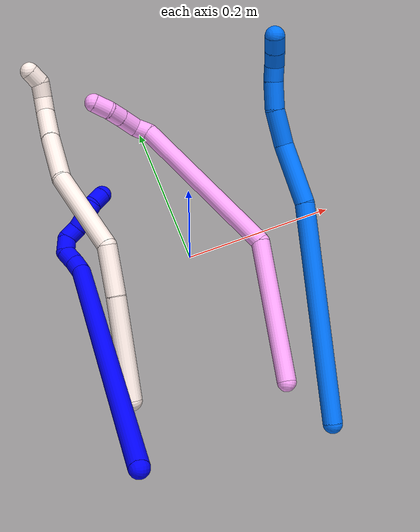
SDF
<sdf version="1.7">
 <world name="default">
  <model name="1">
   <static>0</static>
   <link name="1">
    <collision name="collision-cylinder-e_1_1_4">
     <pose>-0.049748 0.158705 -0.065859 -1.96415 -0.281819 0.418663</pose>
     <geometry><cylinder><radius>0.0125</radius><length>0.357768</length></cylinder></geometry>
     <surface>
      <friction><ode><mu>1.16</mu><mu2>1.16</mu2><slip1>0</slip1><slip2>0</slip2></ode></friction>
      <contact><ode><kp>1e+06</kp><kd>1</kd><max_vel>0</max_vel><min_depth>0.001</min_depth></ode></contact>
     </surface>
    </collision>
    <visual name="visual-cylinder-e_1_1_4">
     <pose>-0.049748 0.158705 -0.065859 -1.96415 -0.281819 0.418663</pose>
     <geometry><cylinder><radius>0.0125</radius><length>0.357768</length></cylinder></geometry>
     <material><ambient>0 0 1 1</ambient></material>
    </visual>
    <collision name="collision-cylinder-e_2_4_5">
     <pose>-0.102901 0.32763 -0.132787 -1.6749 -0.319955 0.35443</pose>
     <geometry><cylinder><radius>0.0125</radius><length>0.021651</length></cylinder></geometry>
     <surface>
      <friction><ode><mu>1.16</mu><mu2>1.16</mu2><slip1>0</slip1><slip2>0</slip2></ode></friction>
      <contact><ode><kp>1e+06</kp><kd>1</kd><max_vel>0</max_vel><min_depth>0.001</min_depth></ode></contact>
     </surface>
    </collision>
    <visual name="visual-cylinder-e_2_4_5">
     <pose>-0.102901 0.32763 -0.132787 -1.6749 -0.319955 0.35443</pose>
     <geometry><cylinder><radius>0.0125</radius><length>0.021651</length></cylinder></geometry>
     <material><ambient>0 0 1 1</ambient></material>
    </visual>
    <collision name="collision-cylinder-e_3_5_6">
     <pose>-0.108462 0.347699 -0.132198 -1.40416 -0.212576 0.180001</pose>
     <geometry><cylinder><radius>0.0125</radius><length>0.020435</length></cylinder></geometry>
     <surface>
      <friction><ode><mu>1.16</mu><mu2>1.16</mu2><slip1>0</slip1><slip2>0</slip2></ode></friction>
      <contact><ode><kp>1e+06</kp><kd>1</kd><max_vel>0</max_vel><min_depth>0.001</min_depth></ode></contact>
     </surface>
    </collision>
    <visual name="visual-cylinder-e_3_5_6">
     <pose>-0.108462 0.347699 -0.132198 -1.40416 -0.212576 0.180001</pose>
     <geometry><cylinder><radius>0.0125</radius><length>0.020435</length></cylinder></geometry>
     <material><ambient>0 0 1 1</ambient></material>
    </visual>
    <collision name="collision-cylinder-e_4_6_7">
     <pose>-0.10758 0.366514 -0.133958 -1.9349 0.306649 -0.441244</pose>
     <geometry><cylinder><radius>0.0125</radius><length>0.020128</length></cylinder></geometry>
     <surface>
      <friction><ode><mu>1.16</mu><mu2>1.16</mu2><slip1>0</slip1><slip2>0</slip2></ode></friction>
      <contact><ode><kp>1e+06</kp><kd>1</kd><max_vel>0</max_vel><min_depth>0.001</min_depth></ode></contact>
     </surface>
    </collision>
    <visual name="visual-cylinder-e_4_6_7">
     <pose>-0.10758 0.366514 -0.133958 -1.9349 0.306649 -0.441244</pose>
     <geometry><cylinder><radius>0.0125</radius><length>0.020128</length></cylinder></geometry>
     <material><ambient>0 0 1 1</ambient></material>
    </visual>
    <collision name="collision-cylinder-e_5_7_8">
     <pose>-0.098018 0.379284 -0.143942 -2.61649 0.709983 -1.88697</pose>
     <geometry><cylinder><radius>0.0125</radius><length>0.020017</length></cylinder></geometry>
     <surface>
      <friction><ode><mu>1.16</mu><mu2>1.16</mu2><slip1>0</slip1><slip2>0</slip2></ode></friction>
      <contact><ode><kp>1e+06</kp><kd>1</kd><max_vel>0</max_vel><min_depth>0.001</min_depth></ode></contact>
     </surface>
    </collision>
    <visual name="visual-cylinder-e_5_7_8">
     <pose>-0.098018 0.379284 -0.143942 -2.61649 0.709983 -1.88697</pose>
     <geometry><cylinder><radius>0.0125</radius><length>0.020017</length></cylinder></geometry>
     <material><ambient>0 0 1 1</ambient></material>
    </visual>
    <collision name="collision-cylinder-e_6_8_9">
     <pose>-0.082948 0.387069 -0.153847 -2.26857 1.02475 -1.75676</pose>
     <geometry><cylinder><radius>0.0125</radius><length>0.020001</length></cylinder></geometry>
     <surface>
      <friction><ode><mu>1.16</mu><mu2>1.16</mu2><slip1>0</slip1><slip2>0</slip2></ode></friction>
      <contact><ode><kp>1e+06</kp><kd>1</kd><max_vel>0</max_vel><min_depth>0.001</min_depth></ode></contact>
     </surface>
    </collision>
    <visual name="visual-cylinder-e_6_8_9">
     <pose>-0.082948 0.387069 -0.153847 -2.26857 1.02475 -1.75676</pose>
     <geometry><cylinder><radius>0.0125</radius><length>0.020001</length></cylinder></geometry>
     <material><ambient>0 0 1 1</ambient></material>
    </visual>
    <collision name="collision-cylinder-e_7_9_10">
     <pose>-0.068193 0.396652 -0.162666 -2.34525 0.669863 -1.38247</pose>
     <geometry><cylinder><radius>0.0125</radius><length>0.02</length></cylinder></geometry>
     <surface>
      <friction><ode><mu>1.16</mu><mu2>1.16</mu2><slip1>0</slip1><slip2>0</slip2></ode></friction>
      <contact><ode><kp>1e+06</kp><kd>1</kd><max_vel>0</max_vel><min_depth>0.001</min_depth></ode></contact>
     </surface>
    </collision>
    <visual name="visual-cylinder-e_7_9_10">
     <pose>-0.068193 0.396652 -0.162666 -2.34525 0.669863 -1.38247</pose>
     <geometry><cylinder><radius>0.0125</radius><length>0.02</length></cylinder></geometry>
     <material><ambient>0 0 1 1</ambient></material>
    </visual>
    <collision name="collision-cylinder-e_8_10_2">
     <pose>-0.058316 0.407127 -0.176073 -2.59043 0.375534 -1.18328</pose>
     <geometry><cylinder><radius>0.0125</radius><length>0.02</length></cylinder></geometry>
     <surface>
      <friction><ode><mu>1.16</mu><mu2>1.16</mu2><slip1>0</slip1><slip2>0</slip2></ode></friction>
      <contact><ode><kp>1e+06</kp><kd>1</kd><max_vel>0</max_vel><min_depth>0.001</min_depth></ode></contact>
     </surface>
    </collision>
    <visual name="visual-cylinder-e_8_10_2">
     <pose>-0.058316 0.407127 -0.176073 -2.59043 0.375534 -1.18328</pose>
     <geometry><cylinder><radius>0.0125</radius><length>0.02</length></cylinder></geometry>
     <material><ambient>0 0 1 1</ambient></material>
    </visual>
    <collision name="collision-sphere-2">
     <pose>-0.054648 0.411999 -0.183999 0 -0 0</pose>
     <geometry><sphere><radius>0.0125</radius></sphere></geometry>
     <surface>
      <friction><ode><mu>1.16</mu><mu2>1.16</mu2><slip1>0</slip1><slip2>0</slip2></ode></friction>
      <contact><ode><kp>1e+06</kp><kd>1</kd><max_vel>0</max_vel><min_depth>0.001</min_depth></ode></contact>
     </surface>
    </collision>
    <visual name="visual-sphere-2">
     <pose>-0.054648 0.411999 -0.183999 0 -0 0</pose>
     <geometry><sphere><radius>0.0125</radius></sphere></geometry>
     <material><ambient>0 0 1 1</ambient></material>
    </visual>
    <collision name="collision-sphere-10">
     <pose>-0.061984 0.402255 -0.168148 0 -0 0</pose>
     <geometry><sphere><radius>0.0125</radius></sphere></geometry>
     <surface>
      <friction><ode><mu>1.16</mu><mu2>1.16</mu2><slip1>0</slip1><slip2>0</slip2></ode></friction>
      <contact><ode><kp>1e+06</kp><kd>1</kd><max_vel>0</max_vel><min_depth>0.001</min_depth></ode></contact>
     </surface>
    </collision>
    <visual name="visual-sphere-10">
     <pose>-0.061984 0.402255 -0.168148 0 -0 0</pose>
     <geometry><sphere><radius>0.0125</radius></sphere></geometry>
     <material><ambient>0 0 1 1</ambient></material>
    </visual>
    <collision name="collision-sphere-9">
     <pose>-0.074401 0.391048 -0.157184 0 -0 0</pose>
     <geometry><sphere><radius>0.0125</radius></sphere></geometry>
     <surface>
      <friction><ode><mu>1.16</mu><mu2>1.16</mu2><slip1>0</slip1><slip2>0</slip2></ode></friction>
      <contact><ode><kp>1e+06</kp><kd>1</kd><max_vel>0</max_vel><min_depth>0.001</min_depth></ode></contact>
     </surface>
    </collision>
    <visual name="visual-sphere-9">
     <pose>-0.074401 0.391048 -0.157184 0 -0 0</pose>
     <geometry><sphere><radius>0.0125</radius></sphere></geometry>
     <material><ambient>0 0 1 1</ambient></material>
    </visual>
    <collision name="collision-sphere-4">
     <pose>-0.099496 0.317409 -0.131719 0 -0 0</pose>
     <geometry><sphere><radius>0.0125</radius></sphere></geometry>
     <surface>
      <friction><ode><mu>1.16</mu><mu2>1.16</mu2><slip1>0</slip1><slip2>0</slip2></ode></friction>
      <contact><ode><kp>1e+06</kp><kd>1</kd><max_vel>0</max_vel><min_depth>0.001</min_depth></ode></contact>
     </surface>
    </collision>
    <visual name="visual-sphere-4">
     <pose>-0.099496 0.317409 -0.131719 0 -0 0</pose>
     <geometry><sphere><radius>0.0125</radius></sphere></geometry>
     <material><ambient>0 0 1 1</ambient></material>
    </visual>
    <collision name="collision-sphere-1">
     <geometry><sphere><radius>0.0125</radius></sphere></geometry>
     <surface>
      <friction><ode><mu>1.16</mu><mu2>1.16</mu2><slip1>0</slip1><slip2>0</slip2></ode></friction>
      <contact><ode><kp>1e+06</kp><kd>1</kd><max_vel>0</max_vel><min_depth>0.001</min_depth></ode></contact>
     </surface>
    </collision>
    <visual name="visual-sphere-1">
     <geometry><sphere><radius>0.0125</radius></sphere></geometry>
     <material><ambient>0 0 1 1</ambient></material>
    </visual>
    <collision name="collision-sphere-8">
     <pose>-0.091494 0.383089 -0.15051 0 -0 0</pose>
     <geometry><sphere><radius>0.0125</radius></sphere></geometry>
     <surface>
      <friction><ode><mu>1.16</mu><mu2>1.16</mu2><slip1>0</slip1><slip2>0</slip2></ode></friction>
      <contact><ode><kp>1e+06</kp><kd>1</kd><max_vel>0</max_vel><min_depth>0.001</min_depth></ode></contact>
     </surface>
    </collision>
    <visual name="visual-sphere-8">
     <pose>-0.091494 0.383089 -0.15051 0 -0 0</pose>
     <geometry><sphere><radius>0.0125</radius></sphere></geometry>
     <material><ambient>0 0 1 1</ambient></material>
    </visual>
    <collision name="collision-sphere-5">
     <pose>-0.106306 0.33785 -0.133855 0 -0 0</pose>
     <geometry><sphere><radius>0.0125</radius></sphere></geometry>
     <surface>
      <friction><ode><mu>1.16</mu><mu2>1.16</mu2><slip1>0</slip1><slip2>0</slip2></ode></friction>
      <contact><ode><kp>1e+06</kp><kd>1</kd><max_vel>0</max_vel><min_depth>0.001</min_depth></ode></contact>
     </surface>
    </collision>
    <visual name="visual-sphere-5">
     <pose>-0.106306 0.33785 -0.133855 0 -0 0</pose>
     <geometry><sphere><radius>0.0125</radius></sphere></geometry>
     <material><ambient>0 0 1 1</ambient></material>
    </visual>
    <collision name="collision-sphere-6">
     <pose>-0.110617 0.357548 -0.130542 0 -0 0</pose>
     <geometry><sphere><radius>0.0125</radius></sphere></geometry>
     <surface>
      <friction><ode><mu>1.16</mu><mu2>1.16</mu2><slip1>0</slip1><slip2>0</slip2></ode></friction>
      <contact><ode><kp>1e+06</kp><kd>1</kd><max_vel>0</max_vel><min_depth>0.001</min_depth></ode></contact>
     </surface>
    </collision>
    <visual name="visual-sphere-6">
     <pose>-0.110617 0.357548 -0.130542 0 -0 0</pose>
     <geometry><sphere><radius>0.0125</radius></sphere></geometry>
     <material><ambient>0 0 1 1</ambient></material>
    </visual>
    <collision name="collision-sphere-7">
     <pose>-0.104542 0.375479 -0.137375 0 -0 0</pose>
     <geometry><sphere><radius>0.0125</radius></sphere></geometry>
     <surface>
      <friction><ode><mu>1.16</mu><mu2>1.16</mu2><slip1>0</slip1><slip2>0</slip2></ode></friction>
      <contact><ode><kp>1e+06</kp><kd>1</kd><max_vel>0</max_vel><min_depth>0.001</min_depth></ode></contact>
     </surface>
    </collision>
    <visual name="visual-sphere-7">
     <pose>-0.104542 0.375479 -0.137375 0 -0 0</pose>
     <geometry><sphere><radius>0.0125</radius></sphere></geometry>
     <material><ambient>0 0 1 1</ambient></material>
    </visual>
    <inertial>
     <pose>-0.061118 0.21953 -0.089137 0 -0 0</pose>
     <mass>0.5</mass>
     <inertia>
      <ixx>0.004853</ixx>
      <ixy>0</ixy>
      <ixz>0</ixz>
      <iyy>0.000585</iyy>
      <iyz>0</iyz>
      <izz>-0.002357</izz>
     </inertia>
    </inertial>
   </link>
   <pose>-0.164702 -0.288507 0.198933 -0.086689 -0.896 0.134248</pose>
  </model>
  <model name="4">
   <static>0</static>
   <link name="4">
    <collision name="collision-cylinder-e_1_1_4">
     <pose>-0.022355 -0.002338 0.091223 0.025621 -0.240251 -0.003093</pose>
     <geometry><cylinder><radius>0.0125</radius><length>0.187903</length></cylinder></geometry>
     <surface>
      <friction><ode><mu>1.16</mu><mu2>1.16</mu2><slip1>0</slip1><slip2>0</slip2></ode></friction>
      <contact><ode><kp>1e+06</kp><kd>1</kd><max_vel>0</max_vel><min_depth>0.001</min_depth></ode></contact>
     </surface>
    </collision>
    <visual name="visual-cylinder-e_1_1_4">
     <pose>-0.022355 -0.002338 0.091223 0.025621 -0.240251 -0.003093</pose>
     <geometry><cylinder><radius>0.0125</radius><length>0.187903</length></cylinder></geometry>
     <material><ambient>1 0.65098 0.996078 1</ambient></material>
    </visual>
    <collision name="collision-cylinder-e_2_4_5">
     <pose>-0.125743 -0.000835 0.257012 -0.051457 -0.826269 0.022561</pose>
     <geometry><cylinder><radius>0.0125</radius><length>0.220372</length></cylinder></geometry>
     <surface>
      <friction><ode><mu>1.16</mu><mu2>1.16</mu2><slip1>0</slip1><slip2>0</slip2></ode></friction>
      <contact><ode><kp>1e+06</kp><kd>1</kd><max_vel>0</max_vel><min_depth>0.001</min_depth></ode></contact>
     </surface>
    </collision>
    <visual name="visual-cylinder-e_2_4_5">
     <pose>-0.125743 -0.000835 0.257012 -0.051457 -0.826269 0.022561</pose>
     <geometry><cylinder><radius>0.0125</radius><length>0.220372</length></cylinder></geometry>
     <material><ambient>1 0.65098 0.996078 1</ambient></material>
    </visual>
    <collision name="collision-cylinder-e_3_5_6">
     <pose>-0.216318 0.001602 0.33446 0.4532 -1.24676 -0.328568</pose>
     <geometry><cylinder><radius>0.0125</radius><length>0.020136</length></cylinder></geometry>
     <surface>
      <friction><ode><mu>1.16</mu><mu2>1.16</mu2><slip1>0</slip1><slip2>0</slip2></ode></friction>
      <contact><ode><kp>1e+06</kp><kd>1</kd><max_vel>0</max_vel><min_depth>0.001</min_depth></ode></contact>
     </surface>
    </collision>
    <visual name="visual-cylinder-e_3_5_6">
     <pose>-0.216318 0.001602 0.33446 0.4532 -1.24676 -0.328568</pose>
     <geometry><cylinder><radius>0.0125</radius><length>0.020136</length></cylinder></geometry>
     <material><ambient>1 0.65098 0.996078 1</ambient></material>
    </visual>
    <collision name="collision-cylinder-e_4_6_7">
     <pose>-0.234738 -0.009546 0.340343 1.27203 -0.716327 -0.539292</pose>
     <geometry><cylinder><radius>0.0125</radius><length>0.027035</length></cylinder></geometry>
     <surface>
      <friction><ode><mu>1.16</mu><mu2>1.16</mu2><slip1>0</slip1><slip2>0</slip2></ode></friction>
      <contact><ode><kp>1e+06</kp><kd>1</kd><max_vel>0</max_vel><min_depth>0.001</min_depth></ode></contact>
     </surface>
    </collision>
    <visual name="visual-cylinder-e_4_6_7">
     <pose>-0.234738 -0.009546 0.340343 1.27203 -0.716327 -0.539292</pose>
     <geometry><cylinder><radius>0.0125</radius><length>0.027035</length></cylinder></geometry>
     <material><ambient>1 0.65098 0.996078 1</ambient></material>
    </visual>
    <collision name="collision-cylinder-e_5_7_8">
     <pose>-0.250474 -0.0271 0.345201 1.33738 -0.707043 -0.567418</pose>
     <geometry><cylinder><radius>0.0125</radius><length>0.021121</length></cylinder></geometry>
     <surface>
      <friction><ode><mu>1.16</mu><mu2>1.16</mu2><slip1>0</slip1><slip2>0</slip2></ode></friction>
      <contact><ode><kp>1e+06</kp><kd>1</kd><max_vel>0</max_vel><min_depth>0.001</min_depth></ode></contact>
     </surface>
    </collision>
    <visual name="visual-cylinder-e_5_7_8">
     <pose>-0.250474 -0.0271 0.345201 1.33738 -0.707043 -0.567418</pose>
     <geometry><cylinder><radius>0.0125</radius><length>0.021121</length></cylinder></geometry>
     <material><ambient>1 0.65098 0.996078 1</ambient></material>
    </visual>
    <collision name="collision-cylinder-e_6_8_2">
     <pose>-0.267239 -0.040534 0.349808 1.11596 -1.00726 -0.662486</pose>
     <geometry><cylinder><radius>0.0125</radius><length>0.023432</length></cylinder></geometry>
     <surface>
      <friction><ode><mu>1.16</mu><mu2>1.16</mu2><slip1>0</slip1><slip2>0</slip2></ode></friction>
      <contact><ode><kp>1e+06</kp><kd>1</kd><max_vel>0</max_vel><min_depth>0.001</min_depth></ode></contact>
     </surface>
    </collision>
    <visual name="visual-cylinder-e_6_8_2">
     <pose>-0.267239 -0.040534 0.349808 1.11596 -1.00726 -0.662486</pose>
     <geometry><cylinder><radius>0.0125</radius><length>0.023432</length></cylinder></geometry>
     <material><ambient>1 0.65098 0.996078 1</ambient></material>
    </visual>
    <collision name="collision-sphere-2">
     <pose>-0.277143 -0.046156 0.352557 0 -0 0</pose>
     <geometry><sphere><radius>0.0125</radius></sphere></geometry>
     <surface>
      <friction><ode><mu>1.16</mu><mu2>1.16</mu2><slip1>0</slip1><slip2>0</slip2></ode></friction>
      <contact><ode><kp>1e+06</kp><kd>1</kd><max_vel>0</max_vel><min_depth>0.001</min_depth></ode></contact>
     </surface>
    </collision>
    <visual name="visual-sphere-2">
     <pose>-0.277143 -0.046156 0.352557 0 -0 0</pose>
     <geometry><sphere><radius>0.0125</radius></sphere></geometry>
     <material><ambient>1 0.65098 0.996078 1</ambient></material>
    </visual>
    <collision name="collision-sphere-4">
     <pose>-0.044711 -0.004675 0.182446 0 -0 0</pose>
     <geometry><sphere><radius>0.0125</radius></sphere></geometry>
     <surface>
      <friction><ode><mu>1.16</mu><mu2>1.16</mu2><slip1>0</slip1><slip2>0</slip2></ode></friction>
      <contact><ode><kp>1e+06</kp><kd>1</kd><max_vel>0</max_vel><min_depth>0.001</min_depth></ode></contact>
     </surface>
    </collision>
    <visual name="visual-sphere-4">
     <pose>-0.044711 -0.004675 0.182446 0 -0 0</pose>
     <geometry><sphere><radius>0.0125</radius></sphere></geometry>
     <material><ambient>1 0.65098 0.996078 1</ambient></material>
    </visual>
    <collision name="collision-sphere-1">
     <geometry><sphere><radius>0.0125</radius></sphere></geometry>
     <surface>
      <friction><ode><mu>1.16</mu><mu2>1.16</mu2><slip1>0</slip1><slip2>0</slip2></ode></friction>
      <contact><ode><kp>1e+06</kp><kd>1</kd><max_vel>0</max_vel><min_depth>0.001</min_depth></ode></contact>
     </surface>
    </collision>
    <visual name="visual-sphere-1">
     <geometry><sphere><radius>0.0125</radius></sphere></geometry>
     <material><ambient>1 0.65098 0.996078 1</ambient></material>
    </visual>
    <collision name="collision-sphere-8">
     <pose>-0.257334 -0.034912 0.347058 0 -0 0</pose>
     <geometry><sphere><radius>0.0125</radius></sphere></geometry>
     <surface>
      <friction><ode><mu>1.16</mu><mu2>1.16</mu2><slip1>0</slip1><slip2>0</slip2></ode></friction>
      <contact><ode><kp>1e+06</kp><kd>1</kd><max_vel>0</max_vel><min_depth>0.001</min_depth></ode></contact>
     </surface>
    </collision>
    <visual name="visual-sphere-8">
     <pose>-0.257334 -0.034912 0.347058 0 -0 0</pose>
     <geometry><sphere><radius>0.0125</radius></sphere></geometry>
     <material><ambient>1 0.65098 0.996078 1</ambient></material>
    </visual>
    <collision name="collision-sphere-5">
     <pose>-0.206774 0.003005 0.331578 0 -0 0</pose>
     <geometry><sphere><radius>0.0125</radius></sphere></geometry>
     <surface>
      <friction><ode><mu>1.16</mu><mu2>1.16</mu2><slip1>0</slip1><slip2>0</slip2></ode></friction>
      <contact><ode><kp>1e+06</kp><kd>1</kd><max_vel>0</max_vel><min_depth>0.001</min_depth></ode></contact>
     </surface>
    </collision>
    <visual name="visual-sphere-5">
     <pose>-0.206774 0.003005 0.331578 0 -0 0</pose>
     <geometry><sphere><radius>0.0125</radius></sphere></geometry>
     <material><ambient>1 0.65098 0.996078 1</ambient></material>
    </visual>
    <collision name="collision-sphere-6">
     <pose>-0.225862 0.000198 0.337342 0 -0 0</pose>
     <geometry><sphere><radius>0.0125</radius></sphere></geometry>
     <surface>
      <friction><ode><mu>1.16</mu><mu2>1.16</mu2><slip1>0</slip1><slip2>0</slip2></ode></friction>
      <contact><ode><kp>1e+06</kp><kd>1</kd><max_vel>0</max_vel><min_depth>0.001</min_depth></ode></contact>
     </surface>
    </collision>
    <visual name="visual-sphere-6">
     <pose>-0.225862 0.000198 0.337342 0 -0 0</pose>
     <geometry><sphere><radius>0.0125</radius></sphere></geometry>
     <material><ambient>1 0.65098 0.996078 1</ambient></material>
    </visual>
    <collision name="collision-sphere-7">
     <pose>-0.243614 -0.019289 0.343344 0 -0 0</pose>
     <geometry><sphere><radius>0.0125</radius></sphere></geometry>
     <surface>
      <friction><ode><mu>1.16</mu><mu2>1.16</mu2><slip1>0</slip1><slip2>0</slip2></ode></friction>
      <contact><ode><kp>1e+06</kp><kd>1</kd><max_vel>0</max_vel><min_depth>0.001</min_depth></ode></contact>
     </surface>
    </collision>
    <visual name="visual-sphere-7">
     <pose>-0.243614 -0.019289 0.343344 0 -0 0</pose>
     <geometry><sphere><radius>0.0125</radius></sphere></geometry>
     <material><ambient>1 0.65098 0.996078 1</ambient></material>
    </visual>
    <inertial>
     <pose>-0.10833 -0.004743 0.210407 0 -0 0</pose>
     <mass>0.5</mass>
     <inertia>
      <ixx>0.001146</ixx>
      <ixy>0</ixy>
      <ixz>0</ixz>
      <iyy>0.001471</iyy>
      <iyz>0</iyz>
      <izz>0.000816</izz>
     </inertia>
    </inertial>
   </link>
   <pose>0.053162 -0.210931 0.012404 -1.41606 -0.082005 -0.451645</pose>
  </model>
  <model name="11">
   <static>0</static>
   <link name="11">
    <collision name="collision-cylinder-e_1_1_4">
     <pose>0.00441 0.033591 0.054302 -0.553986 0.068952 -0.01961</pose>
     <geometry><cylinder><radius>0.0125</radius><length>0.128008</length></cylinder></geometry>
     <surface>
      <friction><ode><mu>1.16</mu><mu2>1.16</mu2><slip1>0</slip1><slip2>0</slip2></ode></friction>
      <contact><ode><kp>1e+06</kp><kd>1</kd><max_vel>0</max_vel><min_depth>0.001</min_depth></ode></contact>
     </surface>
    </collision>
    <visual name="visual-cylinder-e_1_1_4">
     <pose>0.00441 0.033591 0.054302 -0.553986 0.068952 -0.01961</pose>
     <geometry><cylinder><radius>0.0125</radius><length>0.128008</length></cylinder></geometry>
     <material><ambient>1 0.933333 0.909804 1</ambient></material>
    </visual>
    <collision name="collision-cylinder-e_2_4_5">
     <pose>0.010671 0.08601 0.133884 -0.640114 0.058681 -0.019455</pose>
     <geometry><cylinder><radius>0.0125</radius><length>0.063152</length></cylinder></geometry>
     <surface>
      <friction><ode><mu>1.16</mu><mu2>1.16</mu2><slip1>0</slip1><slip2>0</slip2></ode></friction>
      <contact><ode><kp>1e+06</kp><kd>1</kd><max_vel>0</max_vel><min_depth>0.001</min_depth></ode></contact>
     </surface>
    </collision>
    <visual name="visual-cylinder-e_2_4_5">
     <pose>0.010671 0.08601 0.133884 -0.640114 0.058681 -0.019455</pose>
     <geometry><cylinder><radius>0.0125</radius><length>0.063152</length></cylinder></geometry>
     <material><ambient>1 0.933333 0.909804 1</ambient></material>
    </visual>
    <collision name="collision-cylinder-e_3_5_6">
     <pose>-0.001773 0.15651 0.18353 -1.13019 -0.245199 0.155941</pose>
     <geometry><cylinder><radius>0.0125</radius><length>0.117781</length></cylinder></geometry>
     <surface>
      <friction><ode><mu>1.16</mu><mu2>1.16</mu2><slip1>0</slip1><slip2>0</slip2></ode></friction>
      <contact><ode><kp>1e+06</kp><kd>1</kd><max_vel>0</max_vel><min_depth>0.001</min_depth></ode></contact>
     </surface>
    </collision>
    <visual name="visual-cylinder-e_3_5_6">
     <pose>-0.001773 0.15651 0.18353 -1.13019 -0.245199 0.155941</pose>
     <geometry><cylinder><radius>0.0125</radius><length>0.117781</length></cylinder></geometry>
     <material><ambient>1 0.933333 0.909804 1</ambient></material>
    </visual>
    <collision name="collision-cylinder-e_4_6_7">
     <pose>-0.014521 0.243543 0.219712 -1.24827 0.041487 -0.02988</pose>
     <geometry><cylinder><radius>0.0125</radius><length>0.07463</length></cylinder></geometry>
     <surface>
      <friction><ode><mu>1.16</mu><mu2>1.16</mu2><slip1>0</slip1><slip2>0</slip2></ode></friction>
      <contact><ode><kp>1e+06</kp><kd>1</kd><max_vel>0</max_vel><min_depth>0.001</min_depth></ode></contact>
     </surface>
    </collision>
    <visual name="visual-cylinder-e_4_6_7">
     <pose>-0.014521 0.243543 0.219712 -1.24827 0.041487 -0.02988</pose>
     <geometry><cylinder><radius>0.0125</radius><length>0.07463</length></cylinder></geometry>
     <material><ambient>1 0.933333 0.909804 1</ambient></material>
    </visual>
    <collision name="collision-cylinder-e_5_7_8">
     <pose>-0.010488 0.30447 0.239194 -1.27952 0.092842 -0.069112</pose>
     <geometry><cylinder><radius>0.0125</radius><length>0.053611</length></cylinder></geometry>
     <surface>
      <friction><ode><mu>1.16</mu><mu2>1.16</mu2><slip1>0</slip1><slip2>0</slip2></ode></friction>
      <contact><ode><kp>1e+06</kp><kd>1</kd><max_vel>0</max_vel><min_depth>0.001</min_depth></ode></contact>
     </surface>
    </collision>
    <visual name="visual-cylinder-e_5_7_8">
     <pose>-0.010488 0.30447 0.239194 -1.27952 0.092842 -0.069112</pose>
     <geometry><cylinder><radius>0.0125</radius><length>0.053611</length></cylinder></geometry>
     <material><ambient>1 0.933333 0.909804 1</ambient></material>
    </visual>
    <collision name="collision-cylinder-e_6_8_9">
     <pose>-0.007285 0.336876 0.255468 -0.67141 0.06522 -0.022763</pose>
     <geometry><cylinder><radius>0.0125</radius><length>0.022038</length></cylinder></geometry>
     <surface>
      <friction><ode><mu>1.16</mu><mu2>1.16</mu2><slip1>0</slip1><slip2>0</slip2></ode></friction>
      <contact><ode><kp>1e+06</kp><kd>1</kd><max_vel>0</max_vel><min_depth>0.001</min_depth></ode></contact>
     </surface>
    </collision>
    <visual name="visual-cylinder-e_6_8_9">
     <pose>-0.007285 0.336876 0.255468 -0.67141 0.06522 -0.022763</pose>
     <geometry><cylinder><radius>0.0125</radius><length>0.022038</length></cylinder></geometry>
     <material><ambient>1 0.933333 0.909804 1</ambient></material>
    </visual>
    <collision name="collision-cylinder-e_7_9_10">
     <pose>-0.006392 0.346888 0.273941 -0.311158 0.016828 -0.002639</pose>
     <geometry><cylinder><radius>0.0125</radius><length>0.020725</length></cylinder></geometry>
     <surface>
      <friction><ode><mu>1.16</mu><mu2>1.16</mu2><slip1>0</slip1><slip2>0</slip2></ode></friction>
      <contact><ode><kp>1e+06</kp><kd>1</kd><max_vel>0</max_vel><min_depth>0.001</min_depth></ode></contact>
     </surface>
    </collision>
    <visual name="visual-cylinder-e_7_9_10">
     <pose>-0.006392 0.346888 0.273941 -0.311158 0.016828 -0.002639</pose>
     <geometry><cylinder><radius>0.0125</radius><length>0.020725</length></cylinder></geometry>
     <material><ambient>1 0.933333 0.909804 1</ambient></material>
    </visual>
    <collision name="collision-cylinder-e_8_10_2">
     <pose>-0.011772 0.351764 0.291977 -0.205505 -0.587092 0.062319</pose>
     <geometry><cylinder><radius>0.0125</radius><length>0.020055</length></cylinder></geometry>
     <surface>
      <friction><ode><mu>1.16</mu><mu2>1.16</mu2><slip1>0</slip1><slip2>0</slip2></ode></friction>
      <contact><ode><kp>1e+06</kp><kd>1</kd><max_vel>0</max_vel><min_depth>0.001</min_depth></ode></contact>
     </surface>
    </collision>
    <visual name="visual-cylinder-e_8_10_2">
     <pose>-0.011772 0.351764 0.291977 -0.205505 -0.587092 0.062319</pose>
     <geometry><cylinder><radius>0.0125</radius><length>0.020055</length></cylinder></geometry>
     <material><ambient>1 0.933333 0.909804 1</ambient></material>
    </visual>
    <collision name="collision-sphere-2">
     <pose>-0.017327 0.353468 0.30015 0 -0 0</pose>
     <geometry><sphere><radius>0.0125</radius></sphere></geometry>
     <surface>
      <friction><ode><mu>1.16</mu><mu2>1.16</mu2><slip1>0</slip1><slip2>0</slip2></ode></friction>
      <contact><ode><kp>1e+06</kp><kd>1</kd><max_vel>0</max_vel><min_depth>0.001</min_depth></ode></contact>
     </surface>
    </collision>
    <visual name="visual-sphere-2">
     <pose>-0.017327 0.353468 0.30015 0 -0 0</pose>
     <geometry><sphere><radius>0.0125</radius></sphere></geometry>
     <material><ambient>1 0.933333 0.909804 1</ambient></material>
    </visual>
    <collision name="collision-sphere-10">
     <pose>-0.006218 0.350061 0.283805 0 -0 0</pose>
     <geometry><sphere><radius>0.0125</radius></sphere></geometry>
     <surface>
      <friction><ode><mu>1.16</mu><mu2>1.16</mu2><slip1>0</slip1><slip2>0</slip2></ode></friction>
      <contact><ode><kp>1e+06</kp><kd>1</kd><max_vel>0</max_vel><min_depth>0.001</min_depth></ode></contact>
     </surface>
    </collision>
    <visual name="visual-sphere-10">
     <pose>-0.006218 0.350061 0.283805 0 -0 0</pose>
     <geometry><sphere><radius>0.0125</radius></sphere></geometry>
     <material><ambient>1 0.933333 0.909804 1</ambient></material>
    </visual>
    <collision name="collision-sphere-9">
     <pose>-0.006566 0.343716 0.264077 0 -0 0</pose>
     <geometry><sphere><radius>0.0125</radius></sphere></geometry>
     <surface>
      <friction><ode><mu>1.16</mu><mu2>1.16</mu2><slip1>0</slip1><slip2>0</slip2></ode></friction>
      <contact><ode><kp>1e+06</kp><kd>1</kd><max_vel>0</max_vel><min_depth>0.001</min_depth></ode></contact>
     </surface>
    </collision>
    <visual name="visual-sphere-9">
     <pose>-0.006566 0.343716 0.264077 0 -0 0</pose>
     <geometry><sphere><radius>0.0125</radius></sphere></geometry>
     <material><ambient>1 0.933333 0.909804 1</ambient></material>
    </visual>
    <collision name="collision-sphere-4">
     <pose>0.008819 0.067182 0.108603 0 -0 0</pose>
     <geometry><sphere><radius>0.0125</radius></sphere></geometry>
     <surface>
      <friction><ode><mu>1.16</mu><mu2>1.16</mu2><slip1>0</slip1><slip2>0</slip2></ode></friction>
      <contact><ode><kp>1e+06</kp><kd>1</kd><max_vel>0</max_vel><min_depth>0.001</min_depth></ode></contact>
     </surface>
    </collision>
    <visual name="visual-sphere-4">
     <pose>0.008819 0.067182 0.108603 0 -0 0</pose>
     <geometry><sphere><radius>0.0125</radius></sphere></geometry>
     <material><ambient>1 0.933333 0.909804 1</ambient></material>
    </visual>
    <collision name="collision-sphere-1">
     <geometry><sphere><radius>0.0125</radius></sphere></geometry>
     <surface>
      <friction><ode><mu>1.16</mu><mu2>1.16</mu2><slip1>0</slip1><slip2>0</slip2></ode></friction>
      <contact><ode><kp>1e+06</kp><kd>1</kd><max_vel>0</max_vel><min_depth>0.001</min_depth></ode></contact>
     </surface>
    </collision>
    <visual name="visual-sphere-1">
     <geometry><sphere><radius>0.0125</radius></sphere></geometry>
     <material><ambient>1 0.933333 0.909804 1</ambient></material>
    </visual>
    <collision name="collision-sphere-8">
     <pose>-0.008003 0.330036 0.246859 0 -0 0</pose>
     <geometry><sphere><radius>0.0125</radius></sphere></geometry>
     <surface>
      <friction><ode><mu>1.16</mu><mu2>1.16</mu2><slip1>0</slip1><slip2>0</slip2></ode></friction>
      <contact><ode><kp>1e+06</kp><kd>1</kd><max_vel>0</max_vel><min_depth>0.001</min_depth></ode></contact>
     </surface>
    </collision>
    <visual name="visual-sphere-8">
     <pose>-0.008003 0.330036 0.246859 0 -0 0</pose>
     <geometry><sphere><radius>0.0125</radius></sphere></geometry>
     <material><ambient>1 0.933333 0.909804 1</ambient></material>
    </visual>
    <collision name="collision-sphere-5">
     <pose>0.012523 0.104837 0.159165 0 -0 0</pose>
     <geometry><sphere><radius>0.0125</radius></sphere></geometry>
     <surface>
      <friction><ode><mu>1.16</mu><mu2>1.16</mu2><slip1>0</slip1><slip2>0</slip2></ode></friction>
      <contact><ode><kp>1e+06</kp><kd>1</kd><max_vel>0</max_vel><min_depth>0.001</min_depth></ode></contact>
     </surface>
    </collision>
    <visual name="visual-sphere-5">
     <pose>0.012523 0.104837 0.159165 0 -0 0</pose>
     <geometry><sphere><radius>0.0125</radius></sphere></geometry>
     <material><ambient>1 0.933333 0.909804 1</ambient></material>
    </visual>
    <collision name="collision-sphere-6">
     <pose>-0.016068 0.208183 0.207895 0 -0 0</pose>
     <geometry><sphere><radius>0.0125</radius></sphere></geometry>
     <surface>
      <friction><ode><mu>1.16</mu><mu2>1.16</mu2><slip1>0</slip1><slip2>0</slip2></ode></friction>
      <contact><ode><kp>1e+06</kp><kd>1</kd><max_vel>0</max_vel><min_depth>0.001</min_depth></ode></contact>
     </surface>
    </collision>
    <visual name="visual-sphere-6">
     <pose>-0.016068 0.208183 0.207895 0 -0 0</pose>
     <geometry><sphere><radius>0.0125</radius></sphere></geometry>
     <material><ambient>1 0.933333 0.909804 1</ambient></material>
    </visual>
    <collision name="collision-sphere-7">
     <pose>-0.012973 0.278904 0.23153 0 -0 0</pose>
     <geometry><sphere><radius>0.0125</radius></sphere></geometry>
     <surface>
      <friction><ode><mu>1.16</mu><mu2>1.16</mu2><slip1>0</slip1><slip2>0</slip2></ode></friction>
      <contact><ode><kp>1e+06</kp><kd>1</kd><max_vel>0</max_vel><min_depth>0.001</min_depth></ode></contact>
     </surface>
    </collision>
    <visual name="visual-sphere-7">
     <pose>-0.012973 0.278904 0.23153 0 -0 0</pose>
     <geometry><sphere><radius>0.0125</radius></sphere></geometry>
     <material><ambient>1 0.933333 0.909804 1</ambient></material>
    </visual>
    <inertial>
     <pose>-0.002291 0.168665 0.166813 0 -0 0</pose>
     <mass>0.5</mass>
     <inertia>
      <ixx>0.000408</ixx>
      <ixy>0</ixy>
      <ixz>0</ixz>
      <iyy>0.000299</iyy>
      <iyz>0</iyz>
      <izz>-0.000242</izz>
     </inertia>
    </inertial>
   </link>
   <pose>-0.141838 -0.180254 0.069742 -0.612162 0.117238 -0.071405</pose>
  </model>
  <model name="14">
   <static>0</static>
   <link name="14">
    <collision name="collision-cylinder-e_1_1_4">
     <pose>-0.083512 0.11147 -0.006496 -1.629 -0.642167 0.677867</pose>
     <geometry><cylinder><radius>0.0125</radius><length>0.278869</length></cylinder></geometry>
     <surface>
      <friction><ode><mu>1.16</mu><mu2>1.16</mu2><slip1>0</slip1><slip2>0</slip2></ode></friction>
      <contact><ode><kp>1e+06</kp><kd>1</kd><max_vel>0</max_vel><min_depth>0.001</min_depth></ode></contact>
     </surface>
    </collision>
    <visual name="visual-cylinder-e_1_1_4">
     <pose>-0.083512 0.11147 -0.006496 -1.629 -0.642167 0.677867</pose>
     <geometry><cylinder><radius>0.0125</radius><length>0.278869</length></cylinder></geometry>
     <material><ambient>0 0.462745 1 1</ambient></material>
    </visual>
    <collision name="collision-cylinder-e_2_4_5">
     <pose>-0.183998 0.258153 -0.019005 -1.73996 -0.44357 0.522338</pose>
     <geometry><cylinder><radius>0.0125</radius><length>0.079102</length></cylinder></geometry>
     <surface>
      <friction><ode><mu>1.16</mu><mu2>1.16</mu2><slip1>0</slip1><slip2>0</slip2></ode></friction>
      <contact><ode><kp>1e+06</kp><kd>1</kd><max_vel>0</max_vel><min_depth>0.001</min_depth></ode></contact>
     </surface>
    </collision>
    <visual name="visual-cylinder-e_2_4_5">
     <pose>-0.183998 0.258153 -0.019005 -1.73996 -0.44357 0.522338</pose>
     <geometry><cylinder><radius>0.0125</radius><length>0.079102</length></cylinder></geometry>
     <material><ambient>0 0.462745 1 1</ambient></material>
    </visual>
    <collision name="collision-cylinder-e_3_5_6">
     <pose>-0.215629 0.309689 -0.032405 -1.99572 -0.68571 1.01076</pose>
     <geometry><cylinder><radius>0.0125</radius><length>0.046294</length></cylinder></geometry>
     <surface>
      <friction><ode><mu>1.16</mu><mu2>1.16</mu2><slip1>0</slip1><slip2>0</slip2></ode></friction>
      <contact><ode><kp>1e+06</kp><kd>1</kd><max_vel>0</max_vel><min_depth>0.001</min_depth></ode></contact>
     </surface>
    </collision>
    <visual name="visual-cylinder-e_3_5_6">
     <pose>-0.215629 0.309689 -0.032405 -1.99572 -0.68571 1.01076</pose>
     <geometry><cylinder><radius>0.0125</radius><length>0.046294</length></cylinder></geometry>
     <material><ambient>0 0.462745 1 1</ambient></material>
    </visual>
    <collision name="collision-cylinder-e_4_6_7">
     <pose>-0.243227 0.337769 -0.042242 -1.7763 -0.822628 0.984828</pose>
     <geometry><cylinder><radius>0.0125</radius><length>0.035311</length></cylinder></geometry>
     <surface>
      <friction><ode><mu>1.16</mu><mu2>1.16</mu2><slip1>0</slip1><slip2>0</slip2></ode></friction>
      <contact><ode><kp>1e+06</kp><kd>1</kd><max_vel>0</max_vel><min_depth>0.001</min_depth></ode></contact>
     </surface>
    </collision>
    <visual name="visual-cylinder-e_4_6_7">
     <pose>-0.243227 0.337769 -0.042242 -1.7763 -0.822628 0.984828</pose>
     <geometry><cylinder><radius>0.0125</radius><length>0.035311</length></cylinder></geometry>
     <material><ambient>0 0.462745 1 1</ambient></material>
    </visual>
    <collision name="collision-cylinder-e_5_7_8">
     <pose>-0.264594 0.354689 -0.046398 -1.88981 -0.997903 1.29197</pose>
     <geometry><cylinder><radius>0.0125</radius><length>0.020055</length></cylinder></geometry>
     <surface>
      <friction><ode><mu>1.16</mu><mu2>1.16</mu2><slip1>0</slip1><slip2>0</slip2></ode></friction>
      <contact><ode><kp>1e+06</kp><kd>1</kd><max_vel>0</max_vel><min_depth>0.001</min_depth></ode></contact>
     </surface>
    </collision>
    <visual name="visual-cylinder-e_5_7_8">
     <pose>-0.264594 0.354689 -0.046398 -1.88981 -0.997903 1.29197</pose>
     <geometry><cylinder><radius>0.0125</radius><length>0.020055</length></cylinder></geometry>
     <material><ambient>0 0.462745 1 1</ambient></material>
    </visual>
    <collision name="collision-cylinder-e_6_8_9">
     <pose>-0.281749 0.362354 -0.052388 -2.61283 -1.05378 2.27049</pose>
     <geometry><cylinder><radius>0.0125</radius><length>0.020083</length></cylinder></geometry>
     <surface>
      <friction><ode><mu>1.16</mu><mu2>1.16</mu2><slip1>0</slip1><slip2>0</slip2></ode></friction>
      <contact><ode><kp>1e+06</kp><kd>1</kd><max_vel>0</max_vel><min_depth>0.001</min_depth></ode></contact>
     </surface>
    </collision>
    <visual name="visual-cylinder-e_6_8_9">
     <pose>-0.281749 0.362354 -0.052388 -2.61283 -1.05378 2.27049</pose>
     <geometry><cylinder><radius>0.0125</radius><length>0.020083</length></cylinder></geometry>
     <material><ambient>0 0.462745 1 1</ambient></material>
    </visual>
    <collision name="collision-cylinder-e_7_9_2">
     <pose>-0.299098 0.367703 -0.061199 -2.58033 -1.01568 2.18582</pose>
     <geometry><cylinder><radius>0.0125</radius><length>0.020285</length></cylinder></geometry>
     <surface>
      <friction><ode><mu>1.16</mu><mu2>1.16</mu2><slip1>0</slip1><slip2>0</slip2></ode></friction>
      <contact><ode><kp>1e+06</kp><kd>1</kd><max_vel>0</max_vel><min_depth>0.001</min_depth></ode></contact>
     </surface>
    </collision>
    <visual name="visual-cylinder-e_7_9_2">
     <pose>-0.299098 0.367703 -0.061199 -2.58033 -1.01568 2.18582</pose>
     <geometry><cylinder><radius>0.0125</radius><length>0.020285</length></cylinder></geometry>
     <material><ambient>0 0.462745 1 1</ambient></material>
    </visual>
    <collision name="collision-sphere-2">
     <pose>-0.307718 0.370549 -0.065724 0 -0 0</pose>
     <geometry><sphere><radius>0.0125</radius></sphere></geometry>
     <surface>
      <friction><ode><mu>1.16</mu><mu2>1.16</mu2><slip1>0</slip1><slip2>0</slip2></ode></friction>
      <contact><ode><kp>1e+06</kp><kd>1</kd><max_vel>0</max_vel><min_depth>0.001</min_depth></ode></contact>
     </surface>
    </collision>
    <visual name="visual-sphere-2">
     <pose>-0.307718 0.370549 -0.065724 0 -0 0</pose>
     <geometry><sphere><radius>0.0125</radius></sphere></geometry>
     <material><ambient>0 0.462745 1 1</ambient></material>
    </visual>
    <collision name="collision-sphere-9">
     <pose>-0.290478 0.364858 -0.056674 0 -0 0</pose>
     <geometry><sphere><radius>0.0125</radius></sphere></geometry>
     <surface>
      <friction><ode><mu>1.16</mu><mu2>1.16</mu2><slip1>0</slip1><slip2>0</slip2></ode></friction>
      <contact><ode><kp>1e+06</kp><kd>1</kd><max_vel>0</max_vel><min_depth>0.001</min_depth></ode></contact>
     </surface>
    </collision>
    <visual name="visual-sphere-9">
     <pose>-0.290478 0.364858 -0.056674 0 -0 0</pose>
     <geometry><sphere><radius>0.0125</radius></sphere></geometry>
     <material><ambient>0 0.462745 1 1</ambient></material>
    </visual>
    <collision name="collision-sphere-4">
     <pose>-0.167024 0.22294 -0.012991 0 -0 0</pose>
     <geometry><sphere><radius>0.0125</radius></sphere></geometry>
     <surface>
      <friction><ode><mu>1.16</mu><mu2>1.16</mu2><slip1>0</slip1><slip2>0</slip2></ode></friction>
      <contact><ode><kp>1e+06</kp><kd>1</kd><max_vel>0</max_vel><min_depth>0.001</min_depth></ode></contact>
     </surface>
    </collision>
    <visual name="visual-sphere-4">
     <pose>-0.167024 0.22294 -0.012991 0 -0 0</pose>
     <geometry><sphere><radius>0.0125</radius></sphere></geometry>
     <material><ambient>0 0.462745 1 1</ambient></material>
    </visual>
    <collision name="collision-sphere-1">
     <geometry><sphere><radius>0.0125</radius></sphere></geometry>
     <surface>
      <friction><ode><mu>1.16</mu><mu2>1.16</mu2><slip1>0</slip1><slip2>0</slip2></ode></friction>
      <contact><ode><kp>1e+06</kp><kd>1</kd><max_vel>0</max_vel><min_depth>0.001</min_depth></ode></contact>
     </surface>
    </collision>
    <visual name="visual-sphere-1">
     <geometry><sphere><radius>0.0125</radius></sphere></geometry>
     <material><ambient>0 0.462745 1 1</ambient></material>
    </visual>
    <collision name="collision-sphere-8">
     <pose>-0.27302 0.35985 -0.048102 0 -0 0</pose>
     <geometry><sphere><radius>0.0125</radius></sphere></geometry>
     <surface>
      <friction><ode><mu>1.16</mu><mu2>1.16</mu2><slip1>0</slip1><slip2>0</slip2></ode></friction>
      <contact><ode><kp>1e+06</kp><kd>1</kd><max_vel>0</max_vel><min_depth>0.001</min_depth></ode></contact>
     </surface>
    </collision>
    <visual name="visual-sphere-8">
     <pose>-0.27302 0.35985 -0.048102 0 -0 0</pose>
     <geometry><sphere><radius>0.0125</radius></sphere></geometry>
     <material><ambient>0 0.462745 1 1</ambient></material>
    </visual>
    <collision name="collision-sphere-5">
     <pose>-0.200972 0.293367 -0.02502 0 -0 0</pose>
     <geometry><sphere><radius>0.0125</radius></sphere></geometry>
     <surface>
      <friction><ode><mu>1.16</mu><mu2>1.16</mu2><slip1>0</slip1><slip2>0</slip2></ode></friction>
      <contact><ode><kp>1e+06</kp><kd>1</kd><max_vel>0</max_vel><min_depth>0.001</min_depth></ode></contact>
     </surface>
    </collision>
    <visual name="visual-sphere-5">
     <pose>-0.200972 0.293367 -0.02502 0 -0 0</pose>
     <geometry><sphere><radius>0.0125</radius></sphere></geometry>
     <material><ambient>0 0.462745 1 1</ambient></material>
    </visual>
    <collision name="collision-sphere-6">
     <pose>-0.230286 0.326011 -0.039791 0 -0 0</pose>
     <geometry><sphere><radius>0.0125</radius></sphere></geometry>
     <surface>
      <friction><ode><mu>1.16</mu><mu2>1.16</mu2><slip1>0</slip1><slip2>0</slip2></ode></friction>
      <contact><ode><kp>1e+06</kp><kd>1</kd><max_vel>0</max_vel><min_depth>0.001</min_depth></ode></contact>
     </surface>
    </collision>
    <visual name="visual-sphere-6">
     <pose>-0.230286 0.326011 -0.039791 0 -0 0</pose>
     <geometry><sphere><radius>0.0125</radius></sphere></geometry>
     <material><ambient>0 0.462745 1 1</ambient></material>
    </visual>
    <collision name="collision-sphere-7">
     <pose>-0.256167 0.349528 -0.044693 0 -0 0</pose>
     <geometry><sphere><radius>0.0125</radius></sphere></geometry>
     <surface>
      <friction><ode><mu>1.16</mu><mu2>1.16</mu2><slip1>0</slip1><slip2>0</slip2></ode></friction>
      <contact><ode><kp>1e+06</kp><kd>1</kd><max_vel>0</max_vel><min_depth>0.001</min_depth></ode></contact>
     </surface>
    </collision>
    <visual name="visual-sphere-7">
     <pose>-0.256167 0.349528 -0.044693 0 -0 0</pose>
     <geometry><sphere><radius>0.0125</radius></sphere></geometry>
     <material><ambient>0 0.462745 1 1</ambient></material>
    </visual>
    <inertial>
     <pose>-0.146893 0.199239 -0.019061 0 -0 0</pose>
     <mass>0.5</mass>
     <inertia>
      <ixx>0.002095</ixx>
      <ixy>0</ixy>
      <ixz>0</ixz>
      <iyy>0.001584</iyy>
      <iyz>0</iyz>
      <izz>-0.000388</izz>
     </inertia>
    </inertial>
   </link>
   <pose>0.085207 -0.282858 0.01812 -2.86331 0.875313 -2.78799</pose>
  </model>
 </world>
</sdf>
